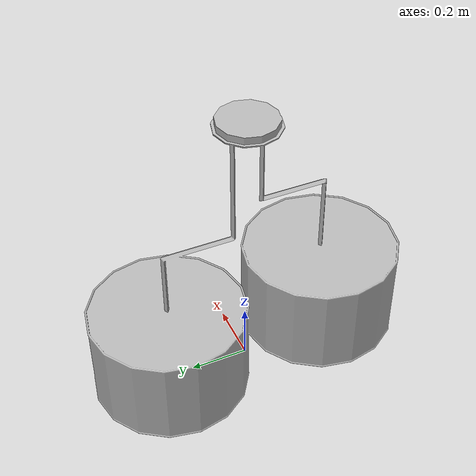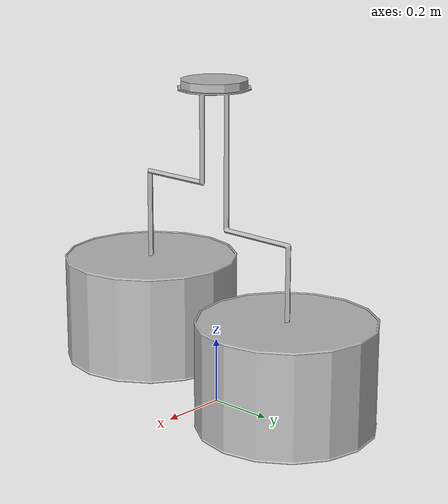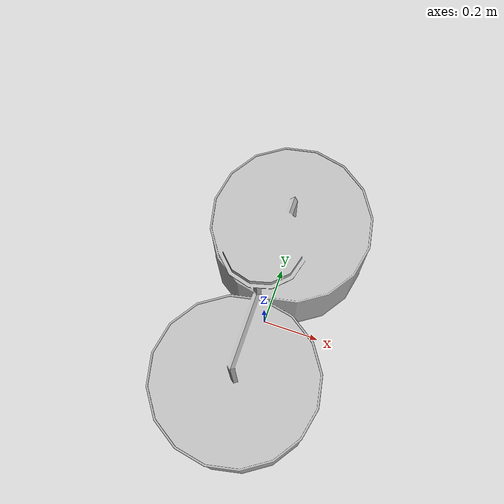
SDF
<?xml version='1.0'?>
<sdf version='1.4'>
  <model name='s__1839'>
    <pose>0 0 0 0 0 0</pose>
    <static>true</static>
    <link name='link'>
      <collision name='collision'>
        <pose>0 0 0 0 0 0</pose>
        <geometry>
          <box>
            <size>0.54 1.1 2</size>
          </box>
        </geometry>
      </collision>
      <visual name='visual'>
        <pose>0 0 0 0 0 0</pose>
        <geometry>
          <mesh><uri>model://s__1839/s__1839.dae</uri></mesh>
        </geometry>
      </visual>
    </link>
  </model>
</sdf>
